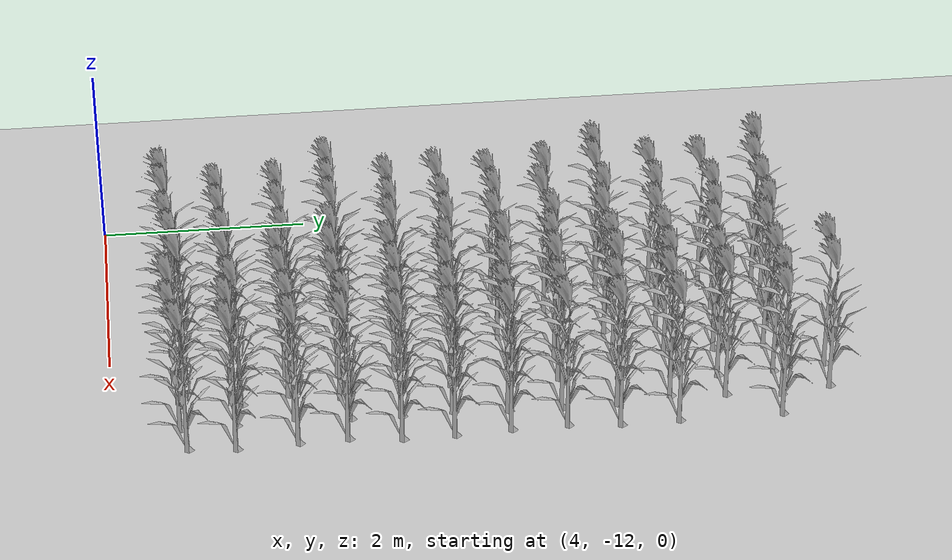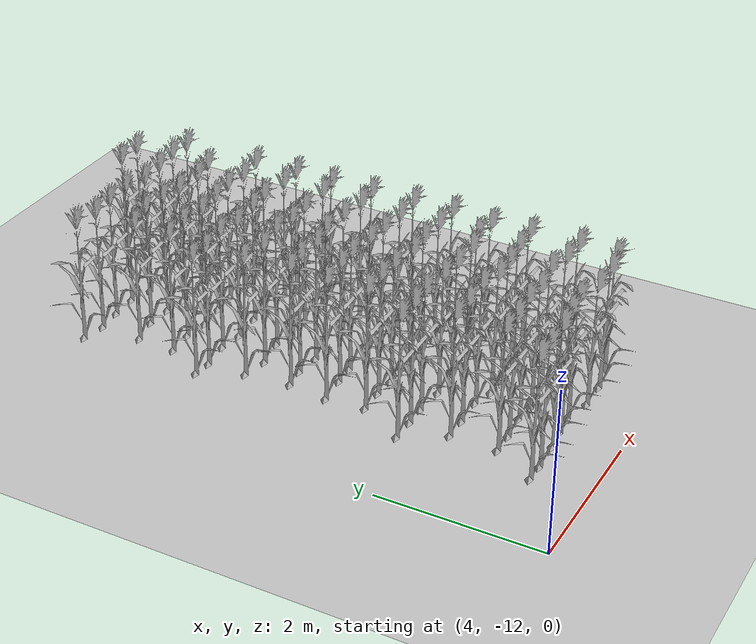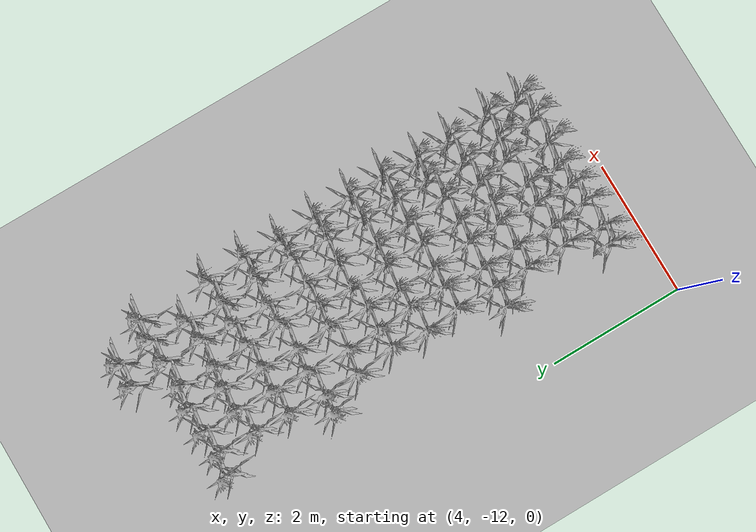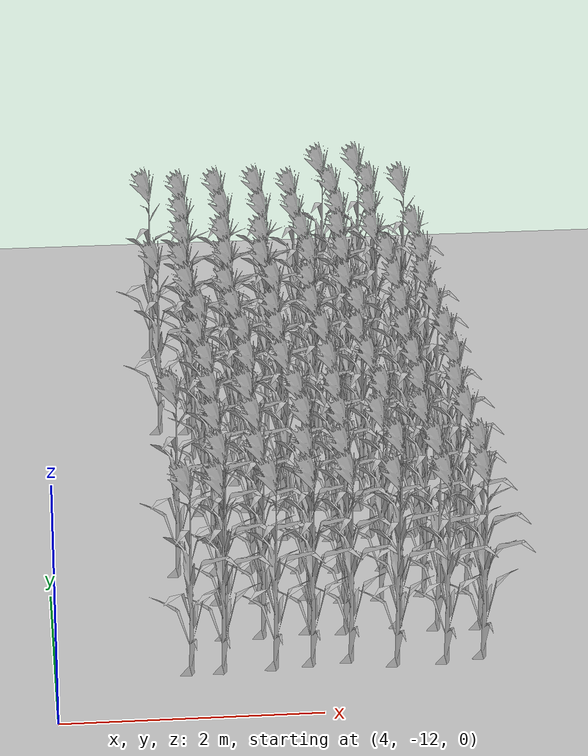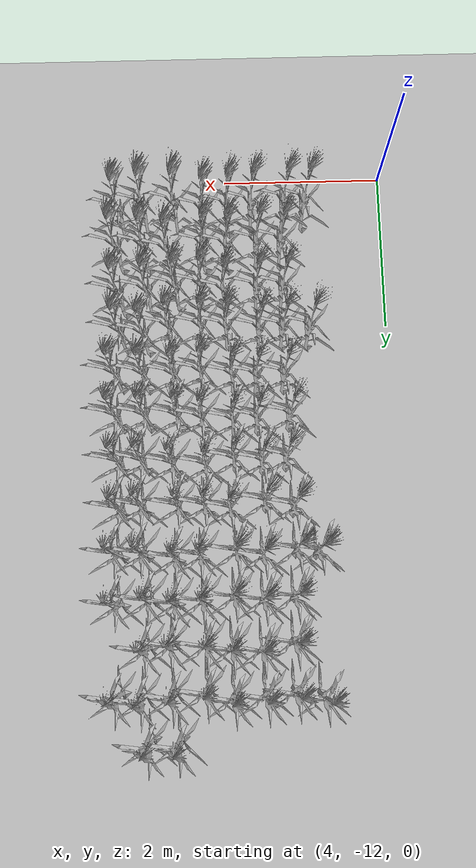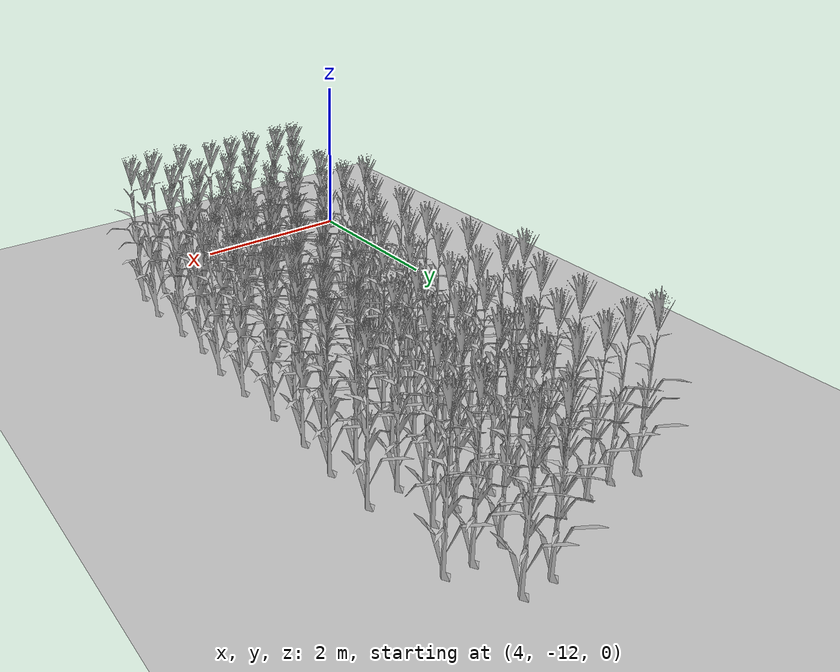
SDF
<sdf version="1.7">
 <world name="farmland_world">
  <model name="ground_plane">
   <static>1</static>
   <link name="link">
    <collision name="collision">
     <geometry><plane><normal>0 0 1</normal><size>40.0 40.0</size></plane></geometry>
     <surface><friction><ode><mu>100</mu><mu2>50</mu2></ode></friction></surface>
    </collision>
    <visual name="visual">
     <cast_shadows>0</cast_shadows>
     <geometry><plane><normal>0 0 1</normal><size>40.0 40.0</size></plane></geometry>
     <material>
      <script><uri>file://media/materials/scripts/gazebo.material</uri><name>Gazebo/Grey</name></script>
     </material>
    </visual>
   </link>
  </model>
  <model name="tree_3_906">
   <static>1</static>
   <link name="link">
    <collision name="collision">
     <geometry><mesh><uri>model://Corn_low_poly/corn.obj</uri><scale>1 1 1</scale></mesh></geometry>
     <surface><friction><ode><mu>100</mu><mu2>50</mu2></ode></friction></surface>
    </collision>
    <visual name="visual">
     <geometry><mesh><uri>model://Corn_low_poly/corn.obj</uri><scale>1 1 1</scale></mesh></geometry>
    </visual>
   </link>
   <pose>5.042530419596723 -5.531569340450362 0 0 0 0</pose>
  </model>
  <model name="tree_3_909">
   <static>1</static>
   <link name="link">
    <collision name="collision">
     <geometry><mesh><uri>model://Corn_low_poly/corn.obj</uri><scale>1 1 1</scale></mesh></geometry>
     <surface><friction><ode><mu>100</mu><mu2>50</mu2></ode></friction></surface>
    </collision>
    <visual name="visual">
     <geometry><mesh><uri>model://Corn_low_poly/corn.obj</uri><scale>1 1 1</scale></mesh></geometry>
    </visual>
   </link>
   <pose>5.035649063971599 -7.114899120069693 0 0 0 0</pose>
  </model>
  <model name="tree_3_914">
   <static>1</static>
   <link name="link">
    <collision name="collision">
     <geometry><mesh><uri>model://Corn_low_poly/corn.obj</uri><scale>1 1 1</scale></mesh></geometry>
     <surface><friction><ode><mu>100</mu><mu2>50</mu2></ode></friction></surface>
    </collision>
    <visual name="visual">
     <geometry><mesh><uri>model://Corn_low_poly/corn.obj</uri><scale>1 1 1</scale></mesh></geometry>
    </visual>
   </link>
   <pose>5.038080929731876 -9.731614770191882 0 0 0 0</pose>
  </model>
  <model name="tree_3_917">
   <static>1</static>
   <link name="link">
    <collision name="collision">
     <geometry><mesh><uri>model://Corn_low_poly/corn.obj</uri><scale>1 1 1</scale></mesh></geometry>
     <surface><friction><ode><mu>100</mu><mu2>50</mu2></ode></friction></surface>
    </collision>
    <visual name="visual">
     <geometry><mesh><uri>model://Corn_low_poly/corn.obj</uri><scale>1 1 1</scale></mesh></geometry>
    </visual>
   </link>
   <pose>5.047684591171636 -11.323939798294647 0 0 0 0</pose>
  </model>
  <model name="tree_3_932">
   <static>1</static>
   <link name="link">
    <collision name="collision">
     <geometry><mesh><uri>model://Corn_low_poly/corn.obj</uri><scale>1 1 1</scale></mesh></geometry>
     <surface><friction><ode><mu>100</mu><mu2>50</mu2></ode></friction></surface>
    </collision>
    <visual name="visual">
     <geometry><mesh><uri>model://Corn_low_poly/corn.obj</uri><scale>1 1 1</scale></mesh></geometry>
    </visual>
   </link>
   <pose>5.348012831007847 -5.58578620494944 0 0 0 0</pose>
  </model>
  <model name="tree_3_933">
   <static>1</static>
   <link name="link">
    <collision name="collision">
     <geometry><mesh><uri>model://Corn_low_poly/corn.obj</uri><scale>1 1 1</scale></mesh></geometry>
     <surface><friction><ode><mu>100</mu><mu2>50</mu2></ode></friction></surface>
    </collision>
    <visual name="visual">
     <geometry><mesh><uri>model://Corn_low_poly/corn.obj</uri><scale>1 1 1</scale></mesh></geometry>
    </visual>
   </link>
   <pose>5.339803959637762 -6.124191647088921 0 0 0 0</pose>
  </model>
  <model name="tree_3_934">
   <static>1</static>
   <link name="link">
    <collision name="collision">
     <geometry><mesh><uri>model://Corn_low_poly/corn.obj</uri><scale>1 1 1</scale></mesh></geometry>
     <surface><friction><ode><mu>100</mu><mu2>50</mu2></ode></friction></surface>
    </collision>
    <visual name="visual">
     <geometry><mesh><uri>model://Corn_low_poly/corn.obj</uri><scale>1 1 1</scale></mesh></geometry>
    </visual>
   </link>
   <pose>5.320709004421784 -6.615633371340587 0 0 0 0</pose>
  </model>
  <model name="tree_3_935">
   <static>1</static>
   <link name="link">
    <collision name="collision">
     <geometry><mesh><uri>model://Corn_low_poly/corn.obj</uri><scale>1 1 1</scale></mesh></geometry>
     <surface><friction><ode><mu>100</mu><mu2>50</mu2></ode></friction></surface>
    </collision>
    <visual name="visual">
     <geometry><mesh><uri>model://Corn_low_poly/corn.obj</uri><scale>1 1 1</scale></mesh></geometry>
    </visual>
   </link>
   <pose>5.280155055562507 -7.137204452366662 0 0 0 0</pose>
  </model>
  <model name="tree_3_936">
   <static>1</static>
   <link name="link">
    <collision name="collision">
     <geometry><mesh><uri>model://Corn_low_poly/corn.obj</uri><scale>1 1 1</scale></mesh></geometry>
     <surface><friction><ode><mu>100</mu><mu2>50</mu2></ode></friction></surface>
    </collision>
    <visual name="visual">
     <geometry><mesh><uri>model://Corn_low_poly/corn.obj</uri><scale>1 1 1</scale></mesh></geometry>
    </visual>
   </link>
   <pose>5.294588596515561 -7.627001879869779 0 0 0 0</pose>
  </model>
  <model name="tree_3_937">
   <static>1</static>
   <link name="link">
    <collision name="collision">
     <geometry><mesh><uri>model://Corn_low_poly/corn.obj</uri><scale>1 1 1</scale></mesh></geometry>
     <surface><friction><ode><mu>100</mu><mu2>50</mu2></ode></friction></surface>
    </collision>
    <visual name="visual">
     <geometry><mesh><uri>model://Corn_low_poly/corn.obj</uri><scale>1 1 1</scale></mesh></geometry>
    </visual>
   </link>
   <pose>5.362841927995124 -8.188748858514888 0 0 0 0</pose>
  </model>
  <model name="tree_3_938">
   <static>1</static>
   <link name="link">
    <collision name="collision">
     <geometry><mesh><uri>model://Corn_low_poly/corn.obj</uri><scale>1 1 1</scale></mesh></geometry>
     <surface><friction><ode><mu>100</mu><mu2>50</mu2></ode></friction></surface>
    </collision>
    <visual name="visual">
     <geometry><mesh><uri>model://Corn_low_poly/corn.obj</uri><scale>1 1 1</scale></mesh></geometry>
    </visual>
   </link>
   <pose>5.306367455266515 -8.68652242906769 0 0 0 0</pose>
  </model>
  <model name="tree_3_939">
   <static>1</static>
   <link name="link">
    <collision name="collision">
     <geometry><mesh><uri>model://Corn_low_poly/corn.obj</uri><scale>1 1 1</scale></mesh></geometry>
     <surface><friction><ode><mu>100</mu><mu2>50</mu2></ode></friction></surface>
    </collision>
    <visual name="visual">
     <geometry><mesh><uri>model://Corn_low_poly/corn.obj</uri><scale>1 1 1</scale></mesh></geometry>
    </visual>
   </link>
   <pose>5.356941859066515 -9.166639848855773 0 0 0 0</pose>
  </model>
  <model name="tree_3_940">
   <static>1</static>
   <link name="link">
    <collision name="collision">
     <geometry><mesh><uri>model://Corn_low_poly/corn.obj</uri><scale>1 1 1</scale></mesh></geometry>
     <surface><friction><ode><mu>100</mu><mu2>50</mu2></ode></friction></surface>
    </collision>
    <visual name="visual">
     <geometry><mesh><uri>model://Corn_low_poly/corn.obj</uri><scale>1 1 1</scale></mesh></geometry>
    </visual>
   </link>
   <pose>5.354316986710436 -9.730777823878082 0 0 0 0</pose>
  </model>
  <model name="tree_3_941">
   <static>1</static>
   <link name="link">
    <collision name="collision">
     <geometry><mesh><uri>model://Corn_low_poly/corn.obj</uri><scale>1 1 1</scale></mesh></geometry>
     <surface><friction><ode><mu>100</mu><mu2>50</mu2></ode></friction></surface>
    </collision>
    <visual name="visual">
     <geometry><mesh><uri>model://Corn_low_poly/corn.obj</uri><scale>1 1 1</scale></mesh></geometry>
    </visual>
   </link>
   <pose>5.342395948201921 -10.231145608861079 0 0 0 0</pose>
  </model>
  <model name="tree_3_942">
   <static>1</static>
   <link name="link">
    <collision name="collision">
     <geometry><mesh><uri>model://Corn_low_poly/corn.obj</uri><scale>1 1 1</scale></mesh></geometry>
     <surface><friction><ode><mu>100</mu><mu2>50</mu2></ode></friction></surface>
    </collision>
    <visual name="visual">
     <geometry><mesh><uri>model://Corn_low_poly/corn.obj</uri><scale>1 1 1</scale></mesh></geometry>
    </visual>
   </link>
   <pose>5.3474200307736695 -10.806225687483577 0 0 0 0</pose>
  </model>
  <model name="tree_3_943">
   <static>1</static>
   <link name="link">
    <collision name="collision">
     <geometry><mesh><uri>model://Corn_low_poly/corn.obj</uri><scale>1 1 1</scale></mesh></geometry>
     <surface><friction><ode><mu>100</mu><mu2>50</mu2></ode></friction></surface>
    </collision>
    <visual name="visual">
     <geometry><mesh><uri>model://Corn_low_poly/corn.obj</uri><scale>1 1 1</scale></mesh></geometry>
    </visual>
   </link>
   <pose>5.296000955319639 -11.325027588914473 0 0 0 0</pose>
  </model>
  <model name="tree_3_958">
   <static>1</static>
   <link name="link">
    <collision name="collision">
     <geometry><mesh><uri>model://Corn_low_poly/corn.obj</uri><scale>1 1 1</scale></mesh></geometry>
     <surface><friction><ode><mu>100</mu><mu2>50</mu2></ode></friction></surface>
    </collision>
    <visual name="visual">
     <geometry><mesh><uri>model://Corn_low_poly/corn.obj</uri><scale>1 1 1</scale></mesh></geometry>
    </visual>
   </link>
   <pose>5.676212198931154 -5.551503889287722 0 0 0 0</pose>
  </model>
  <model name="tree_3_959">
   <static>1</static>
   <link name="link">
    <collision name="collision">
     <geometry><mesh><uri>model://Corn_low_poly/corn.obj</uri><scale>1 1 1</scale></mesh></geometry>
     <surface><friction><ode><mu>100</mu><mu2>50</mu2></ode></friction></surface>
    </collision>
    <visual name="visual">
     <geometry><mesh><uri>model://Corn_low_poly/corn.obj</uri><scale>1 1 1</scale></mesh></geometry>
    </visual>
   </link>
   <pose>5.703162097000613 -6.039912958017074 0 0 0 0</pose>
  </model>
  <model name="tree_3_960">
   <static>1</static>
   <link name="link">
    <collision name="collision">
     <geometry><mesh><uri>model://Corn_low_poly/corn.obj</uri><scale>1 1 1</scale></mesh></geometry>
     <surface><friction><ode><mu>100</mu><mu2>50</mu2></ode></friction></surface>
    </collision>
    <visual name="visual">
     <geometry><mesh><uri>model://Corn_low_poly/corn.obj</uri><scale>1 1 1</scale></mesh></geometry>
    </visual>
   </link>
   <pose>5.67117061484439 -6.585513430421247 0 0 0 0</pose>
  </model>
  <model name="tree_3_961">
   <static>1</static>
   <link name="link">
    <collision name="collision">
     <geometry><mesh><uri>model://Corn_low_poly/corn.obj</uri><scale>1 1 1</scale></mesh></geometry>
     <surface><friction><ode><mu>100</mu><mu2>50</mu2></ode></friction></surface>
    </collision>
    <visual name="visual">
     <geometry><mesh><uri>model://Corn_low_poly/corn.obj</uri><scale>1 1 1</scale></mesh></geometry>
    </visual>
   </link>
   <pose>5.662065561507375 -7.085811126836083 0 0 0 0</pose>
  </model>
  <model name="tree_3_962">
   <static>1</static>
   <link name="link">
    <collision name="collision">
     <geometry><mesh><uri>model://Corn_low_poly/corn.obj</uri><scale>1 1 1</scale></mesh></geometry>
     <surface><friction><ode><mu>100</mu><mu2>50</mu2></ode></friction></surface>
    </collision>
    <visual name="visual">
     <geometry><mesh><uri>model://Corn_low_poly/corn.obj</uri><scale>1 1 1</scale></mesh></geometry>
    </visual>
   </link>
   <pose>5.624523599385493 -7.689419808377574 0 0 0 0</pose>
  </model>
  <model name="tree_3_963">
   <static>1</static>
   <link name="link">
    <collision name="collision">
     <geometry><mesh><uri>model://Corn_low_poly/corn.obj</uri><scale>1 1 1</scale></mesh></geometry>
     <surface><friction><ode><mu>100</mu><mu2>50</mu2></ode></friction></surface>
    </collision>
    <visual name="visual">
     <geometry><mesh><uri>model://Corn_low_poly/corn.obj</uri><scale>1 1 1</scale></mesh></geometry>
    </visual>
   </link>
   <pose>5.645867767123589 -8.148701585002264 0 0 0 0</pose>
  </model>
  <model name="tree_3_964">
   <static>1</static>
   <link name="link">
    <collision name="collision">
     <geometry><mesh><uri>model://Corn_low_poly/corn.obj</uri><scale>1 1 1</scale></mesh></geometry>
     <surface><friction><ode><mu>100</mu><mu2>50</mu2></ode></friction></surface>
    </collision>
    <visual name="visual">
     <geometry><mesh><uri>model://Corn_low_poly/corn.obj</uri><scale>1 1 1</scale></mesh></geometry>
    </visual>
   </link>
   <pose>5.692157455189873 -8.648539478441114 0 0 0 0</pose>
  </model>
  <model name="tree_3_965">
   <static>1</static>
   <link name="link">
    <collision name="collision">
     <geometry><mesh><uri>model://Corn_low_poly/corn.obj</uri><scale>1 1 1</scale></mesh></geometry>
     <surface><friction><ode><mu>100</mu><mu2>50</mu2></ode></friction></surface>
    </collision>
    <visual name="visual">
     <geometry><mesh><uri>model://Corn_low_poly/corn.obj</uri><scale>1 1 1</scale></mesh></geometry>
    </visual>
   </link>
   <pose>5.687256023927131 -9.155390323113878 0 0 0 0</pose>
  </model>
  <model name="tree_3_966">
   <static>1</static>
   <link name="link">
    <collision name="collision">
     <geometry><mesh><uri>model://Corn_low_poly/corn.obj</uri><scale>1 1 1</scale></mesh></geometry>
     <surface><friction><ode><mu>100</mu><mu2>50</mu2></ode></friction></surface>
    </collision>
    <visual name="visual">
     <geometry><mesh><uri>model://Corn_low_poly/corn.obj</uri><scale>1 1 1</scale></mesh></geometry>
    </visual>
   </link>
   <pose>5.635834714384519 -9.723850063259066 0 0 0 0</pose>
  </model>
  <model name="tree_3_967">
   <static>1</static>
   <link name="link">
    <collision name="collision">
     <geometry><mesh><uri>model://Corn_low_poly/corn.obj</uri><scale>1 1 1</scale></mesh></geometry>
     <surface><friction><ode><mu>100</mu><mu2>50</mu2></ode></friction></surface>
    </collision>
    <visual name="visual">
     <geometry><mesh><uri>model://Corn_low_poly/corn.obj</uri><scale>1 1 1</scale></mesh></geometry>
    </visual>
   </link>
   <pose>5.6541768141337165 -10.226875988033097 0 0 0 0</pose>
  </model>
  <model name="tree_3_968">
   <static>1</static>
   <link name="link">
    <collision name="collision">
     <geometry><mesh><uri>model://Corn_low_poly/corn.obj</uri><scale>1 1 1</scale></mesh></geometry>
     <surface><friction><ode><mu>100</mu><mu2>50</mu2></ode></friction></surface>
    </collision>
    <visual name="visual">
     <geometry><mesh><uri>model://Corn_low_poly/corn.obj</uri><scale>1 1 1</scale></mesh></geometry>
    </visual>
   </link>
   <pose>5.641086810160208 -10.80158064865017 0 0 0 0</pose>
  </model>
  <model name="tree_3_969">
   <static>1</static>
   <link name="link">
    <collision name="collision">
     <geometry><mesh><uri>model://Corn_low_poly/corn.obj</uri><scale>1 1 1</scale></mesh></geometry>
     <surface><friction><ode><mu>100</mu><mu2>50</mu2></ode></friction></surface>
    </collision>
    <visual name="visual">
     <geometry><mesh><uri>model://Corn_low_poly/corn.obj</uri><scale>1 1 1</scale></mesh></geometry>
    </visual>
   </link>
   <pose>5.696592779986368 -11.301573450024893 0 0 0 0</pose>
  </model>
  <model name="tree_3_984">
   <static>1</static>
   <link name="link">
    <collision name="collision">
     <geometry><mesh><uri>model://Corn_low_poly/corn.obj</uri><scale>1 1 1</scale></mesh></geometry>
     <surface><friction><ode><mu>100</mu><mu2>50</mu2></ode></friction></surface>
    </collision>
    <visual name="visual">
     <geometry><mesh><uri>model://Corn_low_poly/corn.obj</uri><scale>1 1 1</scale></mesh></geometry>
    </visual>
   </link>
   <pose>6.0279891501427905 -5.533996049554765 0 0 0 0</pose>
  </model>
  <model name="tree_3_985">
   <static>1</static>
   <link name="link">
    <collision name="collision">
     <geometry><mesh><uri>model://Corn_low_poly/corn.obj</uri><scale>1 1 1</scale></mesh></geometry>
     <surface><friction><ode><mu>100</mu><mu2>50</mu2></ode></friction></surface>
    </collision>
    <visual name="visual">
     <geometry><mesh><uri>model://Corn_low_poly/corn.obj</uri><scale>1 1 1</scale></mesh></geometry>
    </visual>
   </link>
   <pose>6.0375661515065735 -6.058326952120325 0 0 0 0</pose>
  </model>
  <model name="tree_3_986">
   <static>1</static>
   <link name="link">
    <collision name="collision">
     <geometry><mesh><uri>model://Corn_low_poly/corn.obj</uri><scale>1 1 1</scale></mesh></geometry>
     <surface><friction><ode><mu>100</mu><mu2>50</mu2></ode></friction></surface>
    </collision>
    <visual name="visual">
     <geometry><mesh><uri>model://Corn_low_poly/corn.obj</uri><scale>1 1 1</scale></mesh></geometry>
    </visual>
   </link>
   <pose>5.999503185471281 -6.628119616431931 0 0 0 0</pose>
  </model>
  <model name="tree_3_987">
   <static>1</static>
   <link name="link">
    <collision name="collision">
     <geometry><mesh><uri>model://Corn_low_poly/corn.obj</uri><scale>1 1 1</scale></mesh></geometry>
     <surface><friction><ode><mu>100</mu><mu2>50</mu2></ode></friction></surface>
    </collision>
    <visual name="visual">
     <geometry><mesh><uri>model://Corn_low_poly/corn.obj</uri><scale>1 1 1</scale></mesh></geometry>
    </visual>
   </link>
   <pose>5.9651614946387115 -7.130967424417288 0 0 0 0</pose>
  </model>
  <model name="tree_3_988">
   <static>1</static>
   <link name="link">
    <collision name="collision">
     <geometry><mesh><uri>model://Corn_low_poly/corn.obj</uri><scale>1 1 1</scale></mesh></geometry>
     <surface><friction><ode><mu>100</mu><mu2>50</mu2></ode></friction></surface>
    </collision>
    <visual name="visual">
     <geometry><mesh><uri>model://Corn_low_poly/corn.obj</uri><scale>1 1 1</scale></mesh></geometry>
    </visual>
   </link>
   <pose>6.024071826427336 -7.617212051030821 0 0 0 0</pose>
  </model>
  <model name="tree_3_989">
   <static>1</static>
   <link name="link">
    <collision name="collision">
     <geometry><mesh><uri>model://Corn_low_poly/corn.obj</uri><scale>1 1 1</scale></mesh></geometry>
     <surface><friction><ode><mu>100</mu><mu2>50</mu2></ode></friction></surface>
    </collision>
    <visual name="visual">
     <geometry><mesh><uri>model://Corn_low_poly/corn.obj</uri><scale>1 1 1</scale></mesh></geometry>
    </visual>
   </link>
   <pose>5.970341052823057 -8.179341104235132 0 0 0 0</pose>
  </model>
  <model name="tree_3_990">
   <static>1</static>
   <link name="link">
    <collision name="collision">
     <geometry><mesh><uri>model://Corn_low_poly/corn.obj</uri><scale>1 1 1</scale></mesh></geometry>
     <surface><friction><ode><mu>100</mu><mu2>50</mu2></ode></friction></surface>
    </collision>
    <visual name="visual">
     <geometry><mesh><uri>model://Corn_low_poly/corn.obj</uri><scale>1 1 1</scale></mesh></geometry>
    </visual>
   </link>
   <pose>5.9717549645056005 -8.631626111965083 0 0 0 0</pose>
  </model>
  <model name="tree_3_991">
   <static>1</static>
   <link name="link">
    <collision name="collision">
     <geometry><mesh><uri>model://Corn_low_poly/corn.obj</uri><scale>1 1 1</scale></mesh></geometry>
     <surface><friction><ode><mu>100</mu><mu2>50</mu2></ode></friction></surface>
    </collision>
    <visual name="visual">
     <geometry><mesh><uri>model://Corn_low_poly/corn.obj</uri><scale>1 1 1</scale></mesh></geometry>
    </visual>
   </link>
   <pose>5.969471555489867 -9.171160769379838 0 0 0 0</pose>
  </model>
  <model name="tree_3_992">
   <static>1</static>
   <link name="link">
    <collision name="collision">
     <geometry><mesh><uri>model://Corn_low_poly/corn.obj</uri><scale>1 1 1</scale></mesh></geometry>
     <surface><friction><ode><mu>100</mu><mu2>50</mu2></ode></friction></surface>
    </collision>
    <visual name="visual">
     <geometry><mesh><uri>model://Corn_low_poly/corn.obj</uri><scale>1 1 1</scale></mesh></geometry>
    </visual>
   </link>
   <pose>6.02787282373407 -9.75100308474688 0 0 0 0</pose>
  </model>
  <model name="tree_3_993">
   <static>1</static>
   <link name="link">
    <collision name="collision">
     <geometry><mesh><uri>model://Corn_low_poly/corn.obj</uri><scale>1 1 1</scale></mesh></geometry>
     <surface><friction><ode><mu>100</mu><mu2>50</mu2></ode></friction></surface>
    </collision>
    <visual name="visual">
     <geometry><mesh><uri>model://Corn_low_poly/corn.obj</uri><scale>1 1 1</scale></mesh></geometry>
    </visual>
   </link>
   <pose>6.047506898130838 -10.20651129601722 0 0 0 0</pose>
  </model>
  <model name="tree_3_994">
   <static>1</static>
   <link name="link">
    <collision name="collision">
     <geometry><mesh><uri>model://Corn_low_poly/corn.obj</uri><scale>1 1 1</scale></mesh></geometry>
     <surface><friction><ode><mu>100</mu><mu2>50</mu2></ode></friction></surface>
    </collision>
    <visual name="visual">
     <geometry><mesh><uri>model://Corn_low_poly/corn.obj</uri><scale>1 1 1</scale></mesh></geometry>
    </visual>
   </link>
   <pose>6.004639606838781 -10.765655345372242 0 0 0 0</pose>
  </model>
  <model name="tree_3_995">
   <static>1</static>
   <link name="link">
    <collision name="collision">
     <geometry><mesh><uri>model://Corn_low_poly/corn.obj</uri><scale>1 1 1</scale></mesh></geometry>
     <surface><friction><ode><mu>100</mu><mu2>50</mu2></ode></friction></surface>
    </collision>
    <visual name="visual">
     <geometry><mesh><uri>model://Corn_low_poly/corn.obj</uri><scale>1 1 1</scale></mesh></geometry>
    </visual>
   </link>
   <pose>5.985001468133278 -11.266585138481457 0 0 0 0</pose>
  </model>
  <model name="tree_3_1010">
   <static>1</static>
   <link name="link">
    <collision name="collision">
     <geometry><mesh><uri>model://Corn_low_poly/corn.obj</uri><scale>1 1 1</scale></mesh></geometry>
     <surface><friction><ode><mu>100</mu><mu2>50</mu2></ode></friction></surface>
    </collision>
    <visual name="visual">
     <geometry><mesh><uri>model://Corn_low_poly/corn.obj</uri><scale>1 1 1</scale></mesh></geometry>
    </visual>
   </link>
   <pose>6.326099755321478 -5.60932732851711 0 0 0 0</pose>
  </model>
  <model name="tree_3_1011">
   <static>1</static>
   <link name="link">
    <collision name="collision">
     <geometry><mesh><uri>model://Corn_low_poly/corn.obj</uri><scale>1 1 1</scale></mesh></geometry>
     <surface><friction><ode><mu>100</mu><mu2>50</mu2></ode></friction></surface>
    </collision>
    <visual name="visual">
     <geometry><mesh><uri>model://Corn_low_poly/corn.obj</uri><scale>1 1 1</scale></mesh></geometry>
    </visual>
   </link>
   <pose>6.321301987536759 -6.103057124706208 0 0 0 0</pose>
  </model>
  <model name="tree_3_1012">
   <static>1</static>
   <link name="link">
    <collision name="collision">
     <geometry><mesh><uri>model://Corn_low_poly/corn.obj</uri><scale>1 1 1</scale></mesh></geometry>
     <surface><friction><ode><mu>100</mu><mu2>50</mu2></ode></friction></surface>
    </collision>
    <visual name="visual">
     <geometry><mesh><uri>model://Corn_low_poly/corn.obj</uri><scale>1 1 1</scale></mesh></geometry>
    </visual>
   </link>
   <pose>6.355137667209105 -6.590808284555608 0 0 0 0</pose>
  </model>
  <model name="tree_3_1013">
   <static>1</static>
   <link name="link">
    <collision name="collision">
     <geometry><mesh><uri>model://Corn_low_poly/corn.obj</uri><scale>1 1 1</scale></mesh></geometry>
     <surface><friction><ode><mu>100</mu><mu2>50</mu2></ode></friction></surface>
    </collision>
    <visual name="visual">
     <geometry><mesh><uri>model://Corn_low_poly/corn.obj</uri><scale>1 1 1</scale></mesh></geometry>
    </visual>
   </link>
   <pose>6.37473475447877 -7.093673226122656 0 0 0 0</pose>
  </model>
  <model name="tree_3_1014">
   <static>1</static>
   <link name="link">
    <collision name="collision">
     <geometry><mesh><uri>model://Corn_low_poly/corn.obj</uri><scale>1 1 1</scale></mesh></geometry>
     <surface><friction><ode><mu>100</mu><mu2>50</mu2></ode></friction></surface>
    </collision>
    <visual name="visual">
     <geometry><mesh><uri>model://Corn_low_poly/corn.obj</uri><scale>1 1 1</scale></mesh></geometry>
    </visual>
   </link>
   <pose>6.3181873071213275 -7.656986869642909 0 0 0 0</pose>
  </model>
  <model name="tree_3_1015">
   <static>1</static>
   <link name="link">
    <collision name="collision">
     <geometry><mesh><uri>model://Corn_low_poly/corn.obj</uri><scale>1 1 1</scale></mesh></geometry>
     <surface><friction><ode><mu>100</mu><mu2>50</mu2></ode></friction></surface>
    </collision>
    <visual name="visual">
     <geometry><mesh><uri>model://Corn_low_poly/corn.obj</uri><scale>1 1 1</scale></mesh></geometry>
    </visual>
   </link>
   <pose>6.300348498553962 -8.11779179690164 0 0 0 0</pose>
  </model>
  <model name="tree_3_1016">
   <static>1</static>
   <link name="link">
    <collision name="collision">
     <geometry><mesh><uri>model://Corn_low_poly/corn.obj</uri><scale>1 1 1</scale></mesh></geometry>
     <surface><friction><ode><mu>100</mu><mu2>50</mu2></ode></friction></surface>
    </collision>
    <visual name="visual">
     <geometry><mesh><uri>model://Corn_low_poly/corn.obj</uri><scale>1 1 1</scale></mesh></geometry>
    </visual>
   </link>
   <pose>6.338880396656451 -8.668026727063582 0 0 0 0</pose>
  </model>
  <model name="tree_3_1017">
   <static>1</static>
   <link name="link">
    <collision name="collision">
     <geometry><mesh><uri>model://Corn_low_poly/corn.obj</uri><scale>1 1 1</scale></mesh></geometry>
     <surface><friction><ode><mu>100</mu><mu2>50</mu2></ode></friction></surface>
    </collision>
    <visual name="visual">
     <geometry><mesh><uri>model://Corn_low_poly/corn.obj</uri><scale>1 1 1</scale></mesh></geometry>
    </visual>
   </link>
   <pose>6.337778605071654 -9.219342674593383 0 0 0 0</pose>
  </model>
  <model name="tree_3_1018">
   <static>1</static>
   <link name="link">
    <collision name="collision">
     <geometry><mesh><uri>model://Corn_low_poly/corn.obj</uri><scale>1 1 1</scale></mesh></geometry>
     <surface><friction><ode><mu>100</mu><mu2>50</mu2></ode></friction></surface>
    </collision>
    <visual name="visual">
     <geometry><mesh><uri>model://Corn_low_poly/corn.obj</uri><scale>1 1 1</scale></mesh></geometry>
    </visual>
   </link>
   <pose>6.330139984276572 -9.769014367721704 0 0 0 0</pose>
  </model>
  <model name="tree_3_1019">
   <static>1</static>
   <link name="link">
    <collision name="collision">
     <geometry><mesh><uri>model://Corn_low_poly/corn.obj</uri><scale>1 1 1</scale></mesh></geometry>
     <surface><friction><ode><mu>100</mu><mu2>50</mu2></ode></friction></surface>
    </collision>
    <visual name="visual">
     <geometry><mesh><uri>model://Corn_low_poly/corn.obj</uri><scale>1 1 1</scale></mesh></geometry>
    </visual>
   </link>
   <pose>6.32190666078619 -10.277281212039526 0 0 0 0</pose>
  </model>
  <model name="tree_3_1020">
   <static>1</static>
   <link name="link">
    <collision name="collision">
     <geometry><mesh><uri>model://Corn_low_poly/corn.obj</uri><scale>1 1 1</scale></mesh></geometry>
     <surface><friction><ode><mu>100</mu><mu2>50</mu2></ode></friction></surface>
    </collision>
    <visual name="visual">
     <geometry><mesh><uri>model://Corn_low_poly/corn.obj</uri><scale>1 1 1</scale></mesh></geometry>
    </visual>
   </link>
   <pose>6.286502530851729 -10.787701341119366 0 0 0 0</pose>
  </model>
  <model name="tree_3_1021">
   <static>1</static>
   <link name="link">
    <collision name="collision">
     <geometry><mesh><uri>model://Corn_low_poly/corn.obj</uri><scale>1 1 1</scale></mesh></geometry>
     <surface><friction><ode><mu>100</mu><mu2>50</mu2></ode></friction></surface>
    </collision>
    <visual name="visual">
     <geometry><mesh><uri>model://Corn_low_poly/corn.obj</uri><scale>1 1 1</scale></mesh></geometry>
    </visual>
   </link>
   <pose>6.282462677394775 -11.236066384255235 0 0 0 0</pose>
  </model>
  <model name="tree_3_1035">
   <static>1</static>
   <link name="link">
    <collision name="collision">
     <geometry><mesh><uri>model://Corn_low_poly/corn.obj</uri><scale>1 1 1</scale></mesh></geometry>
     <surface><friction><ode><mu>100</mu><mu2>50</mu2></ode></friction></surface>
    </collision>
    <visual name="visual">
     <geometry><mesh><uri>model://Corn_low_poly/corn.obj</uri><scale>1 1 1</scale></mesh></geometry>
    </visual>
   </link>
   <pose>6.6344500768541925 -5.060046572557042 0 0 0 0</pose>
  </model>
  <model name="tree_3_1036">
   <static>1</static>
   <link name="link">
    <collision name="collision">
     <geometry><mesh><uri>model://Corn_low_poly/corn.obj</uri><scale>1 1 1</scale></mesh></geometry>
     <surface><friction><ode><mu>100</mu><mu2>50</mu2></ode></friction></surface>
    </collision>
    <visual name="visual">
     <geometry><mesh><uri>model://Corn_low_poly/corn.obj</uri><scale>1 1 1</scale></mesh></geometry>
    </visual>
   </link>
   <pose>6.698127369276403 -5.569502566683074 0 0 0 0</pose>
  </model>
  <model name="tree_3_1037">
   <static>1</static>
   <link name="link">
    <collision name="collision">
     <geometry><mesh><uri>model://Corn_low_poly/corn.obj</uri><scale>1 1 1</scale></mesh></geometry>
     <surface><friction><ode><mu>100</mu><mu2>50</mu2></ode></friction></surface>
    </collision>
    <visual name="visual">
     <geometry><mesh><uri>model://Corn_low_poly/corn.obj</uri><scale>1 1 1</scale></mesh></geometry>
    </visual>
   </link>
   <pose>6.712700572089747 -6.1153075756502195 0 0 0 0</pose>
  </model>
  <model name="tree_3_1038">
   <static>1</static>
   <link name="link">
    <collision name="collision">
     <geometry><mesh><uri>model://Corn_low_poly/corn.obj</uri><scale>1 1 1</scale></mesh></geometry>
     <surface><friction><ode><mu>100</mu><mu2>50</mu2></ode></friction></surface>
    </collision>
    <visual name="visual">
     <geometry><mesh><uri>model://Corn_low_poly/corn.obj</uri><scale>1 1 1</scale></mesh></geometry>
    </visual>
   </link>
   <pose>6.670884860316635 -6.566393744513007 0 0 0 0</pose>
  </model>
  <model name="tree_3_1039">
   <static>1</static>
   <link name="link">
    <collision name="collision">
     <geometry><mesh><uri>model://Corn_low_poly/corn.obj</uri><scale>1 1 1</scale></mesh></geometry>
     <surface><friction><ode><mu>100</mu><mu2>50</mu2></ode></friction></surface>
    </collision>
    <visual name="visual">
     <geometry><mesh><uri>model://Corn_low_poly/corn.obj</uri><scale>1 1 1</scale></mesh></geometry>
    </visual>
   </link>
   <pose>6.658244262943263 -7.075496366024796 0 0 0 0</pose>
  </model>
  <model name="tree_3_1040">
   <static>1</static>
   <link name="link">
    <collision name="collision">
     <geometry><mesh><uri>model://Corn_low_poly/corn.obj</uri><scale>1 1 1</scale></mesh></geometry>
     <surface><friction><ode><mu>100</mu><mu2>50</mu2></ode></friction></surface>
    </collision>
    <visual name="visual">
     <geometry><mesh><uri>model://Corn_low_poly/corn.obj</uri><scale>1 1 1</scale></mesh></geometry>
    </visual>
   </link>
   <pose>6.620729439569556 -7.654714148299897 0 0 0 0</pose>
  </model>
  <model name="tree_3_1041">
   <static>1</static>
   <link name="link">
    <collision name="collision">
     <geometry><mesh><uri>model://Corn_low_poly/corn.obj</uri><scale>1 1 1</scale></mesh></geometry>
     <surface><friction><ode><mu>100</mu><mu2>50</mu2></ode></friction></surface>
    </collision>
    <visual name="visual">
     <geometry><mesh><uri>model://Corn_low_poly/corn.obj</uri><scale>1 1 1</scale></mesh></geometry>
    </visual>
   </link>
   <pose>6.683595915386662 -8.141430289750312 0 0 0 0</pose>
  </model>
  <model name="tree_3_1042">
   <static>1</static>
   <link name="link">
    <collision name="collision">
     <geometry><mesh><uri>model://Corn_low_poly/corn.obj</uri><scale>1 1 1</scale></mesh></geometry>
     <surface><friction><ode><mu>100</mu><mu2>50</mu2></ode></friction></surface>
    </collision>
    <visual name="visual">
     <geometry><mesh><uri>model://Corn_low_poly/corn.obj</uri><scale>1 1 1</scale></mesh></geometry>
    </visual>
   </link>
   <pose>6.621446282001113 -8.699286999004133 0 0 0 0</pose>
  </model>
  <model name="tree_3_1043">
   <static>1</static>
   <link name="link">
    <collision name="collision">
     <geometry><mesh><uri>model://Corn_low_poly/corn.obj</uri><scale>1 1 1</scale></mesh></geometry>
     <surface><friction><ode><mu>100</mu><mu2>50</mu2></ode></friction></surface>
    </collision>
    <visual name="visual">
     <geometry><mesh><uri>model://Corn_low_poly/corn.obj</uri><scale>1 1 1</scale></mesh></geometry>
    </visual>
   </link>
   <pose>6.659205046581757 -9.190412089980924 0 0 0 0</pose>
  </model>
  <model name="tree_3_1044">
   <static>1</static>
   <link name="link">
    <collision name="collision">
     <geometry><mesh><uri>model://Corn_low_poly/corn.obj</uri><scale>1 1 1</scale></mesh></geometry>
     <surface><friction><ode><mu>100</mu><mu2>50</mu2></ode></friction></surface>
    </collision>
    <visual name="visual">
     <geometry><mesh><uri>model://Corn_low_poly/corn.obj</uri><scale>1 1 1</scale></mesh></geometry>
    </visual>
   </link>
   <pose>6.707772258721162 -9.769711552442262 0 0 0 0</pose>
  </model>
  <model name="tree_3_1045">
   <static>1</static>
   <link name="link">
    <collision name="collision">
     <geometry><mesh><uri>model://Corn_low_poly/corn.obj</uri><scale>1 1 1</scale></mesh></geometry>
     <surface><friction><ode><mu>100</mu><mu2>50</mu2></ode></friction></surface>
    </collision>
    <visual name="visual">
     <geometry><mesh><uri>model://Corn_low_poly/corn.obj</uri><scale>1 1 1</scale></mesh></geometry>
    </visual>
   </link>
   <pose>6.621593135303331 -10.261563187584805 0 0 0 0</pose>
  </model>
  <model name="tree_3_1046">
   <static>1</static>
   <link name="link">
    <collision name="collision">
     <geometry><mesh><uri>model://Corn_low_poly/corn.obj</uri><scale>1 1 1</scale></mesh></geometry>
     <surface><friction><ode><mu>100</mu><mu2>50</mu2></ode></friction></surface>
    </collision>
    <visual name="visual">
     <geometry><mesh><uri>model://Corn_low_poly/corn.obj</uri><scale>1 1 1</scale></mesh></geometry>
    </visual>
   </link>
   <pose>6.718041604972088 -10.72209656907272 0 0 0 0</pose>
  </model>
  <model name="tree_3_1047">
   <static>1</static>
   <link name="link">
    <collision name="collision">
     <geometry><mesh><uri>model://Corn_low_poly/corn.obj</uri><scale>1 1 1</scale></mesh></geometry>
     <surface><friction><ode><mu>100</mu><mu2>50</mu2></ode></friction></surface>
    </collision>
    <visual name="visual">
     <geometry><mesh><uri>model://Corn_low_poly/corn.obj</uri><scale>1 1 1</scale></mesh></geometry>
    </visual>
   </link>
   <pose>6.630422779221562 -11.323563787386709 0 0 0 0</pose>
  </model>
  <model name="tree_3_1061">
   <static>1</static>
   <link name="link">
    <collision name="collision">
     <geometry><mesh><uri>model://Corn_low_poly/corn.obj</uri><scale>1 1 1</scale></mesh></geometry>
     <surface><friction><ode><mu>100</mu><mu2>50</mu2></ode></friction></surface>
    </collision>
    <visual name="visual">
     <geometry><mesh><uri>model://Corn_low_poly/corn.obj</uri><scale>1 1 1</scale></mesh></geometry>
    </visual>
   </link>
   <pose>6.9595975301079145 -5.0602090826142065 0 0 0 0</pose>
  </model>
  <model name="tree_3_1062">
   <static>1</static>
   <link name="link">
    <collision name="collision">
     <geometry><mesh><uri>model://Corn_low_poly/corn.obj</uri><scale>1 1 1</scale></mesh></geometry>
     <surface><friction><ode><mu>100</mu><mu2>50</mu2></ode></friction></surface>
    </collision>
    <visual name="visual">
     <geometry><mesh><uri>model://Corn_low_poly/corn.obj</uri><scale>1 1 1</scale></mesh></geometry>
    </visual>
   </link>
   <pose>7.0386736399555865 -5.535965415804201 0 0 0 0</pose>
  </model>
  <model name="tree_3_1063">
   <static>1</static>
   <link name="link">
    <collision name="collision">
     <geometry><mesh><uri>model://Corn_low_poly/corn.obj</uri><scale>1 1 1</scale></mesh></geometry>
     <surface><friction><ode><mu>100</mu><mu2>50</mu2></ode></friction></surface>
    </collision>
    <visual name="visual">
     <geometry><mesh><uri>model://Corn_low_poly/corn.obj</uri><scale>1 1 1</scale></mesh></geometry>
    </visual>
   </link>
   <pose>6.9950179265494565 -6.073866500145455 0 0 0 0</pose>
  </model>
  <model name="tree_3_1064">
   <static>1</static>
   <link name="link">
    <collision name="collision">
     <geometry><mesh><uri>model://Corn_low_poly/corn.obj</uri><scale>1 1 1</scale></mesh></geometry>
     <surface><friction><ode><mu>100</mu><mu2>50</mu2></ode></friction></surface>
    </collision>
    <visual name="visual">
     <geometry><mesh><uri>model://Corn_low_poly/corn.obj</uri><scale>1 1 1</scale></mesh></geometry>
    </visual>
   </link>
   <pose>6.962189038421258 -6.609219705583779 0 0 0 0</pose>
  </model>
  <model name="tree_3_1065">
   <static>1</static>
   <link name="link">
    <collision name="collision">
     <geometry><mesh><uri>model://Corn_low_poly/corn.obj</uri><scale>1 1 1</scale></mesh></geometry>
     <surface><friction><ode><mu>100</mu><mu2>50</mu2></ode></friction></surface>
    </collision>
    <visual name="visual">
     <geometry><mesh><uri>model://Corn_low_poly/corn.obj</uri><scale>1 1 1</scale></mesh></geometry>
    </visual>
   </link>
   <pose>7.037322774067447 -7.128745720791274 0 0 0 0</pose>
  </model>
  <model name="tree_3_1066">
   <static>1</static>
   <link name="link">
    <collision name="collision">
     <geometry><mesh><uri>model://Corn_low_poly/corn.obj</uri><scale>1 1 1</scale></mesh></geometry>
     <surface><friction><ode><mu>100</mu><mu2>50</mu2></ode></friction></surface>
    </collision>
    <visual name="visual">
     <geometry><mesh><uri>model://Corn_low_poly/corn.obj</uri><scale>1 1 1</scale></mesh></geometry>
    </visual>
   </link>
   <pose>7.041907306942271 -7.662576419767485 0 0 0 0</pose>
  </model>
  <model name="tree_3_1067">
   <static>1</static>
   <link name="link">
    <collision name="collision">
     <geometry><mesh><uri>model://Corn_low_poly/corn.obj</uri><scale>1 1 1</scale></mesh></geometry>
     <surface><friction><ode><mu>100</mu><mu2>50</mu2></ode></friction></surface>
    </collision>
    <visual name="visual">
     <geometry><mesh><uri>model://Corn_low_poly/corn.obj</uri><scale>1 1 1</scale></mesh></geometry>
    </visual>
   </link>
   <pose>7.035140736129349 -8.181076749456196 0 0 0 0</pose>
  </model>
  <model name="tree_3_1068">
   <static>1</static>
   <link name="link">
    <collision name="collision">
     <geometry><mesh><uri>model://Corn_low_poly/corn.obj</uri><scale>1 1 1</scale></mesh></geometry>
     <surface><friction><ode><mu>100</mu><mu2>50</mu2></ode></friction></surface>
    </collision>
    <visual name="visual">
     <geometry><mesh><uri>model://Corn_low_poly/corn.obj</uri><scale>1 1 1</scale></mesh></geometry>
    </visual>
   </link>
   <pose>7.0032484971201026 -8.71216733847865 0 0 0 0</pose>
  </model>
  <model name="tree_3_1069">
   <static>1</static>
   <link name="link">
    <collision name="collision">
     <geometry><mesh><uri>model://Corn_low_poly/corn.obj</uri><scale>1 1 1</scale></mesh></geometry>
     <surface><friction><ode><mu>100</mu><mu2>50</mu2></ode></friction></surface>
    </collision>
    <visual name="visual">
     <geometry><mesh><uri>model://Corn_low_poly/corn.obj</uri><scale>1 1 1</scale></mesh></geometry>
    </visual>
   </link>
   <pose>7.01882119229885 -9.205750729242634 0 0 0 0</pose>
  </model>
  <model name="tree_3_1070">
   <static>1</static>
   <link name="link">
    <collision name="collision">
     <geometry><mesh><uri>model://Corn_low_poly/corn.obj</uri><scale>1 1 1</scale></mesh></geometry>
     <surface><friction><ode><mu>100</mu><mu2>50</mu2></ode></friction></surface>
    </collision>
    <visual name="visual">
     <geometry><mesh><uri>model://Corn_low_poly/corn.obj</uri><scale>1 1 1</scale></mesh></geometry>
    </visual>
   </link>
   <pose>7.011996187189033 -9.692134718347315 0 0 0 0</pose>
  </model>
  <model name="tree_3_1071">
   <static>1</static>
   <link name="link">
    <collision name="collision">
     <geometry><mesh><uri>model://Corn_low_poly/corn.obj</uri><scale>1 1 1</scale></mesh></geometry>
     <surface><friction><ode><mu>100</mu><mu2>50</mu2></ode></friction></surface>
    </collision>
    <visual name="visual">
     <geometry><mesh><uri>model://Corn_low_poly/corn.obj</uri><scale>1 1 1</scale></mesh></geometry>
    </visual>
   </link>
   <pose>6.966891195069581 -10.222938792633911 0 0 0 0</pose>
  </model>
  <model name="tree_3_1072">
   <static>1</static>
   <link name="link">
    <collision name="collision">
     <geometry><mesh><uri>model://Corn_low_poly/corn.obj</uri><scale>1 1 1</scale></mesh></geometry>
     <surface><friction><ode><mu>100</mu><mu2>50</mu2></ode></friction></surface>
    </collision>
    <visual name="visual">
     <geometry><mesh><uri>model://Corn_low_poly/corn.obj</uri><scale>1 1 1</scale></mesh></geometry>
    </visual>
   </link>
   <pose>7.006797144063232 -10.787712258068511 0 0 0 0</pose>
  </model>
  <model name="tree_3_1073">
   <static>1</static>
   <link name="link">
    <collision name="collision">
     <geometry><mesh><uri>model://Corn_low_poly/corn.obj</uri><scale>1 1 1</scale></mesh></geometry>
     <surface><friction><ode><mu>100</mu><mu2>50</mu2></ode></friction></surface>
    </collision>
    <visual name="visual">
     <geometry><mesh><uri>model://Corn_low_poly/corn.obj</uri><scale>1 1 1</scale></mesh></geometry>
    </visual>
   </link>
   <pose>7.012572562711933 -11.31571832527443 0 0 0 0</pose>
  </model>
  <model name="tree_3_1088">
   <static>1</static>
   <link name="link">
    <collision name="collision">
     <geometry><mesh><uri>model://Corn_low_poly/corn.obj</uri><scale>1 1 1</scale></mesh></geometry>
     <surface><friction><ode><mu>100</mu><mu2>50</mu2></ode></friction></surface>
    </collision>
    <visual name="visual">
     <geometry><mesh><uri>model://Corn_low_poly/corn.obj</uri><scale>1 1 1</scale></mesh></geometry>
    </visual>
   </link>
   <pose>7.313338178216042 -5.567578867567551 0 0 0 0</pose>
  </model>
  <model name="tree_3_1090">
   <static>1</static>
   <link name="link">
    <collision name="collision">
     <geometry><mesh><uri>model://Corn_low_poly/corn.obj</uri><scale>1 1 1</scale></mesh></geometry>
     <surface><friction><ode><mu>100</mu><mu2>50</mu2></ode></friction></surface>
    </collision>
    <visual name="visual">
     <geometry><mesh><uri>model://Corn_low_poly/corn.obj</uri><scale>1 1 1</scale></mesh></geometry>
    </visual>
   </link>
   <pose>7.320561388759401 -6.564569164598898 0 0 0 0</pose>
  </model>
  <model name="tree_3_1091">
   <static>1</static>
   <link name="link">
    <collision name="collision">
     <geometry><mesh><uri>model://Corn_low_poly/corn.obj</uri><scale>1 1 1</scale></mesh></geometry>
     <surface><friction><ode><mu>100</mu><mu2>50</mu2></ode></friction></surface>
    </collision>
    <visual name="visual">
     <geometry><mesh><uri>model://Corn_low_poly/corn.obj</uri><scale>1 1 1</scale></mesh></geometry>
    </visual>
   </link>
   <pose>7.330429030505598 -7.128062341670336 0 0 0 0</pose>
  </model>
  <model name="tree_3_1092">
   <static>1</static>
   <link name="link">
    <collision name="collision">
     <geometry><mesh><uri>model://Corn_low_poly/corn.obj</uri><scale>1 1 1</scale></mesh></geometry>
     <surface><friction><ode><mu>100</mu><mu2>50</mu2></ode></friction></surface>
    </collision>
    <visual name="visual">
     <geometry><mesh><uri>model://Corn_low_poly/corn.obj</uri><scale>1 1 1</scale></mesh></geometry>
    </visual>
   </link>
   <pose>7.291713733733478 -7.634423741453546 0 0 0 0</pose>
  </model>
  <model name="tree_3_1093">
   <static>1</static>
   <link name="link">
    <collision name="collision">
     <geometry><mesh><uri>model://Corn_low_poly/corn.obj</uri><scale>1 1 1</scale></mesh></geometry>
     <surface><friction><ode><mu>100</mu><mu2>50</mu2></ode></friction></surface>
    </collision>
    <visual name="visual">
     <geometry><mesh><uri>model://Corn_low_poly/corn.obj</uri><scale>1 1 1</scale></mesh></geometry>
    </visual>
   </link>
   <pose>7.304634900365642 -8.17481332109246 0 0 0 0</pose>
  </model>
  <model name="tree_3_1094">
   <static>1</static>
   <link name="link">
    <collision name="collision">
     <geometry><mesh><uri>model://Corn_low_poly/corn.obj</uri><scale>1 1 1</scale></mesh></geometry>
     <surface><friction><ode><mu>100</mu><mu2>50</mu2></ode></friction></surface>
    </collision>
    <visual name="visual">
     <geometry><mesh><uri>model://Corn_low_poly/corn.obj</uri><scale>1 1 1</scale></mesh></geometry>
    </visual>
   </link>
   <pose>7.336273393434488 -8.715697656236218 0 0 0 0</pose>
  </model>
  <model name="tree_3_1095">
   <static>1</static>
   <link name="link">
    <collision name="collision">
     <geometry><mesh><uri>model://Corn_low_poly/corn.obj</uri><scale>1 1 1</scale></mesh></geometry>
     <surface><friction><ode><mu>100</mu><mu2>50</mu2></ode></friction></surface>
    </collision>
    <visual name="visual">
     <geometry><mesh><uri>model://Corn_low_poly/corn.obj</uri><scale>1 1 1</scale></mesh></geometry>
    </visual>
   </link>
   <pose>7.346085332241151 -9.218477611350021 0 0 0 0</pose>
  </model>
  <model name="tree_3_1096">
   <static>1</static>
   <link name="link">
    <collision name="collision">
     <geometry><mesh><uri>model://Corn_low_poly/corn.obj</uri><scale>1 1 1</scale></mesh></geometry>
     <surface><friction><ode><mu>100</mu><mu2>50</mu2></ode></friction></surface>
    </collision>
    <visual name="visual">
     <geometry><mesh><uri>model://Corn_low_poly/corn.obj</uri><scale>1 1 1</scale></mesh></geometry>
    </visual>
   </link>
   <pose>7.294051512737859 -9.731121539430143 0 0 0 0</pose>
  </model>
  <model name="tree_3_1097">
   <static>1</static>
   <link name="link">
    <collision name="collision">
     <geometry><mesh><uri>model://Corn_low_poly/corn.obj</uri><scale>1 1 1</scale></mesh></geometry>
     <surface><friction><ode><mu>100</mu><mu2>50</mu2></ode></friction></surface>
    </collision>
    <visual name="visual">
     <geometry><mesh><uri>model://Corn_low_poly/corn.obj</uri><scale>1 1 1</scale></mesh></geometry>
    </visual>
   </link>
   <pose>7.31090185166685 -10.205625181426608 0 0 0 0</pose>
  </model>
  <model name="tree_3_1098">
   <static>1</static>
   <link name="link">
    <collision name="collision">
     <geometry><mesh><uri>model://Corn_low_poly/corn.obj</uri><scale>1 1 1</scale></mesh></geometry>
     <surface><friction><ode><mu>100</mu><mu2>50</mu2></ode></friction></surface>
    </collision>
    <visual name="visual">
     <geometry><mesh><uri>model://Corn_low_poly/corn.obj</uri><scale>1 1 1</scale></mesh></geometry>
    </visual>
   </link>
   <pose>7.340962521239017 -10.797974554300442 0 0 0 0</pose>
  </model>
  <model name="tree_3_1099">
   <static>1</static>
   <link name="link">
    <collision name="collision">
     <geometry><mesh><uri>model://Corn_low_poly/corn.obj</uri><scale>1 1 1</scale></mesh></geometry>
     <surface><friction><ode><mu>100</mu><mu2>50</mu2></ode></friction></surface>
    </collision>
    <visual name="visual">
     <geometry><mesh><uri>model://Corn_low_poly/corn.obj</uri><scale>1 1 1</scale></mesh></geometry>
    </visual>
   </link>
   <pose>7.305848981638478 -11.258682234822992 0 0 0 0</pose>
  </model>
 </world>
</sdf>
